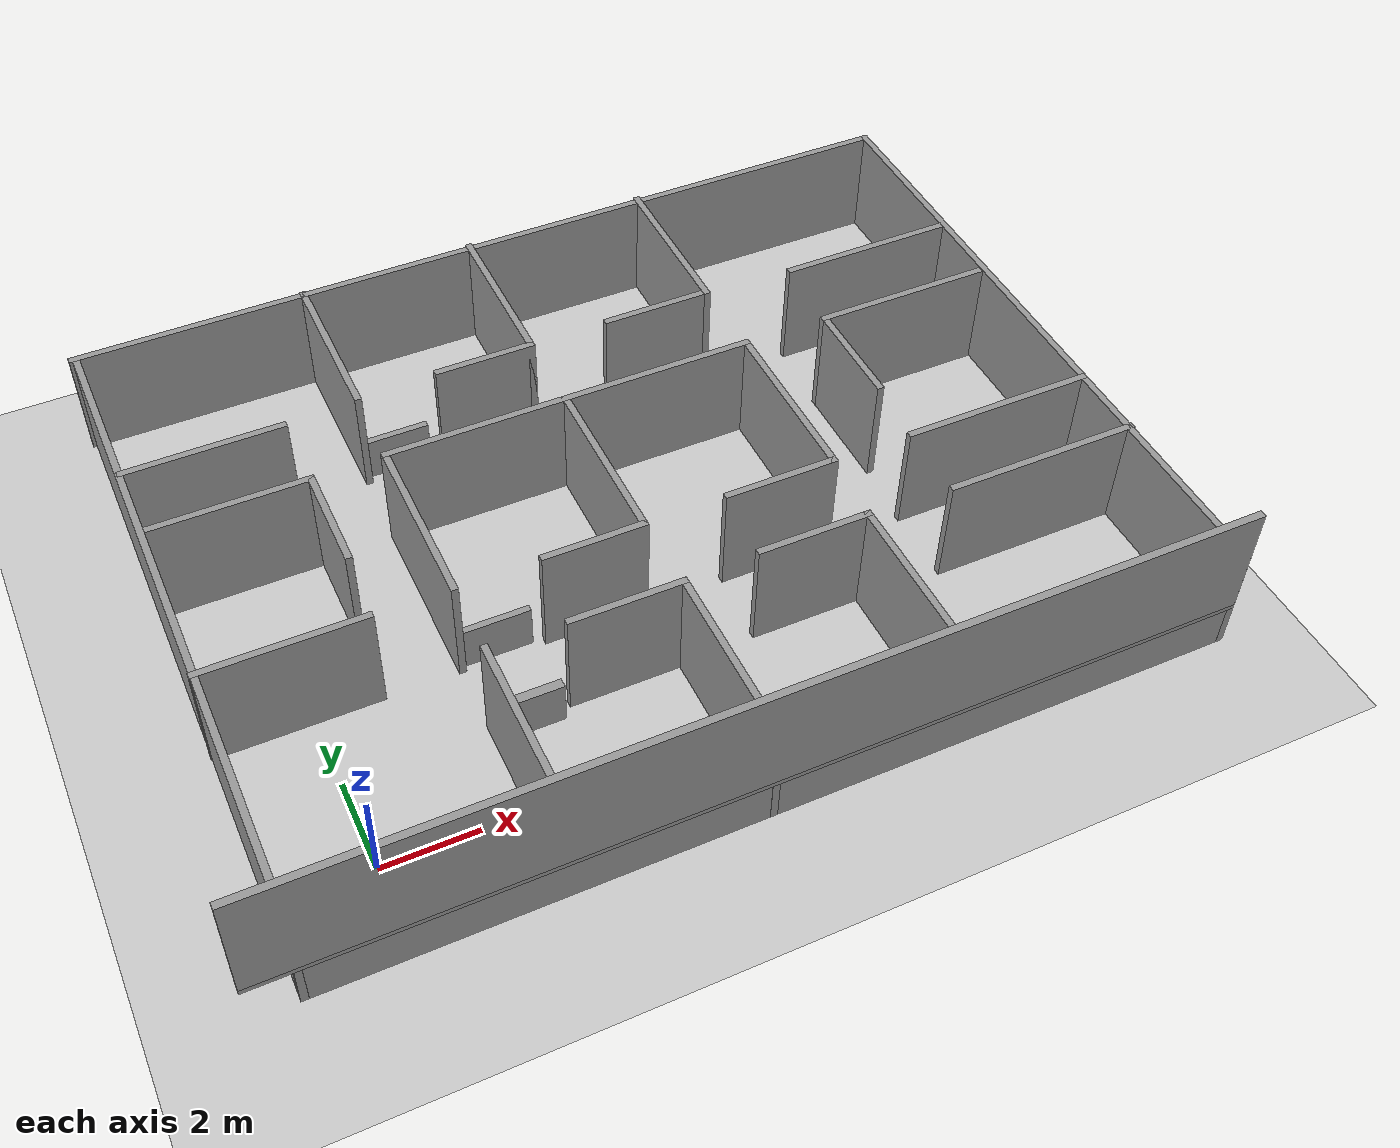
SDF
<sdf version="1.7">
 <world name="default">
  <light name="sun" type="directional">
   <pose>0 0 10 0 -0 0</pose>
   <diffuse>0.8 0.8 0.8 1</diffuse>
   <specular>0.2 0.2 0.2 1</specular>
   <attenuation>
    <range>1000</range>
    <constant>0.9</constant>
    <linear>0.01</linear>
    <quadratic>0.001</quadratic>
   </attenuation>
   <direction>-0.5 0.1 -0.9</direction>
   <spot><inner_angle>0</inner_angle><outer_angle>0</outer_angle><falloff>0</falloff></spot>
  </light>
  <model name="ground_plane">
   <static>1</static>
   <link name="link">
    <collision name="collision">
     <geometry><plane><normal>0 0 1</normal><size>100 100</size></plane></geometry>
     <surface><friction><ode><mu>100</mu><mu2>50</mu2></ode></friction></surface>
    </collision>
    <visual name="visual">
     <cast_shadows>0</cast_shadows>
     <geometry><plane><normal>0 0 1</normal><size>100 100</size></plane></geometry>
     <material>
      <script><uri>file://media/materials/scripts/gazebo.material</uri><name>Gazebo/Grey</name></script>
     </material>
    </visual>
   </link>
  </model>
  <gravity>0 0 -9.8</gravity>
  <magnetic_field>6e-06 2.3e-05 -4.2e-05</magnetic_field>
  <atmosphere type="adiabatic"/>
  <physics type="ode">
   <max_step_size>0.001</max_step_size>
   <real_time_factor>1</real_time_factor>
   <real_time_update_rate>1000</real_time_update_rate>
  </physics>
  <scene><ambient>0.4 0.4 0.4 1</ambient><background>0.7 0.7 0.7 1</background><shadows>1</shadows></scene>
  <spherical_coordinates>
   <surface_model>EARTH_WGS84</surface_model>
   <latitude_deg>0</latitude_deg>
   <longitude_deg>0</longitude_deg>
   <elevation>0</elevation>
   <heading_deg>0</heading_deg>
  </spherical_coordinates>
  <model name="indoors_2">
   <pose>7.49118 5.50535 0 0 -0 0</pose>
   <link name="Floor_0">
    <collision name="Floor_0_Collision">
     <geometry><box><size>19 0.15 0.1</size></box></geometry>
     <pose>0 0 0.05 0 -0 0</pose>
    </collision>
    <visual name="Floor_0_Visual">
     <pose>0 0 0.05 0 -0 0</pose>
     <geometry><box><size>19 0.15 0.1</size></box></geometry>
     <material>
      <script><uri>file://media/materials/scripts/gazebo.material</uri><name>Gazebo/Grey</name></script>
      <ambient>1 1 1 1</ambient>
     </material>
     <meta><layer>1</layer></meta>
    </visual>
    <pose>-1.02608 -8.28602 2.5 0 -0 0</pose>
   </link>
   <link name="Wall_0">
    <collision name="Wall_0_Collision">
     <geometry><box><size>19.15 0.15 2.5</size></box></geometry>
     <pose>0 0 1.25 0 -0 0</pose>
    </collision>
    <visual name="Wall_0_Visual">
     <pose>0 0 1.25 0 -0 0</pose>
     <geometry><box><size>19.15 0.15 2.5</size></box></geometry>
     <material>
      <script><uri>file://media/materials/scripts/gazebo.material</uri><name>Gazebo/Grey</name></script>
      <ambient>1 1 1 1</ambient>
     </material>
     <meta><layer>0</layer></meta>
    </visual>
    <pose>0.018922 -7.38602 0 0 -0 0</pose>
   </link>
   <link name="Wall_10">
    <collision name="Wall_10_Collision">
     <geometry><box><size>4 0.15 2.5</size></box></geometry>
     <pose>0 0 1.25 0 -0 0</pose>
    </collision>
    <visual name="Wall_10_Visual">
     <pose>0 0 1.25 0 -0 0</pose>
     <geometry><box><size>4 0.15 2.5</size></box></geometry>
     <material>
      <script><uri>file://media/materials/scripts/gazebo.material</uri><name>Gazebo/Grey</name></script>
      <ambient>1 1 1 1</ambient>
     </material>
     <meta><layer>0</layer></meta>
    </visual>
    <pose>-4.48108 -5.40902 0 0 -0 1.5708</pose>
   </link>
   <link name="Wall_12">
    <collision name="Wall_12_Collision">
     <geometry><box><size>4 0.15 2.5</size></box></geometry>
     <pose>0 0 1.25 0 -0 0</pose>
    </collision>
    <visual name="Wall_12_Visual">
     <pose>0 0 1.25 0 -0 0</pose>
     <geometry><box><size>4 0.15 2.5</size></box></geometry>
     <material>
      <script><uri>file://media/materials/scripts/gazebo.material</uri><name>Gazebo/Grey</name></script>
      <ambient>1 1 1 1</ambient>
     </material>
     <meta><layer>0</layer></meta>
    </visual>
    <pose>-0.481078 -5.46502 0 0 -0 1.5708</pose>
   </link>
   <link name="Wall_14">
    <collision name="Wall_14_Collision">
     <geometry><box><size>4 0.15 2.5</size></box></geometry>
     <pose>0 0 1.25 0 -0 0</pose>
    </collision>
    <visual name="Wall_14_Visual">
     <pose>0 0 1.25 0 -0 0</pose>
     <geometry><box><size>4 0.15 2.5</size></box></geometry>
     <material>
      <script><uri>file://media/materials/scripts/gazebo.material</uri><name>Gazebo/Grey</name></script>
      <ambient>1 1 1 1</ambient>
     </material>
     <meta><layer>0</layer></meta>
    </visual>
    <pose>3.51892 -5.39402 0 0 -0 1.5708</pose>
   </link>
   <link name="Wall_16">
    <collision name="Wall_16_Collision">
     <geometry><box><size>4.3 0.15 2.5</size></box></geometry>
     <pose>0 0 1.25 0 -0 0</pose>
    </collision>
    <visual name="Wall_16_Visual">
     <pose>0 0 1.25 0 -0 0</pose>
     <geometry><box><size>4.3 0.15 2.5</size></box></geometry>
     <material>
      <script><uri>file://media/materials/scripts/gazebo.material</uri><name>Gazebo/Grey</name></script>
      <ambient>1 1 1 1</ambient>
     </material>
     <meta><layer>0</layer></meta>
    </visual>
    <pose>7.47943 -3.5532 0 0 -0 3.14159</pose>
   </link>
   <link name="Wall_18">
    <collision name="Wall_18_Collision">
     <geometry><box><size>2.5 0.15 2.5</size></box></geometry>
     <pose>0 0 1.25 0 -0 0</pose>
    </collision>
    <visual name="Wall_18_Visual">
     <pose>0 0 1.25 0 -0 0</pose>
     <geometry><box><size>2.5 0.15 2.5</size></box></geometry>
     <material>
      <script><uri>file://media/materials/scripts/gazebo.material</uri><name>Gazebo/Grey</name></script>
      <ambient>1 1 1 1</ambient>
     </material>
     <meta><layer>0</layer></meta>
    </visual>
    <pose>-1.65608 -3.54002 0 0 -0 3.14159</pose>
   </link>
   <link name="Wall_2">
    <collision name="Wall_2_Collision">
     <geometry><box><size>19 0.15 2.5</size></box></geometry>
     <pose>0 0 1.25 0 -0 0</pose>
    </collision>
    <visual name="Wall_2_Visual">
     <pose>0 0 1.25 0 -0 0</pose>
     <geometry><box><size>19 0.15 2.5</size></box></geometry>
     <material>
      <script><uri>file://media/materials/scripts/gazebo.material</uri><name>Gazebo/Grey</name></script>
      <ambient>1 1 1 1</ambient>
     </material>
     <meta><layer>1</layer></meta>
    </visual>
    <pose>-1.02608 -8.28602 2.5 0 -0 0</pose>
   </link>
   <link name="Wall_20">
    <collision name="Wall_20_Collision">
     <geometry><box><size>2.5 0.15 2.5</size></box></geometry>
     <pose>0 0 1.25 0 -0 0</pose>
    </collision>
    <visual name="Wall_20_Visual">
     <pose>0 0 1.25 0 -0 0</pose>
     <geometry><box><size>2.5 0.15 2.5</size></box></geometry>
     <material>
      <script><uri>file://media/materials/scripts/gazebo.material</uri><name>Gazebo/Grey</name></script>
      <ambient>1 1 1 1</ambient>
     </material>
     <meta><layer>0</layer></meta>
    </visual>
    <pose>2.34392 -3.46902 0 0 -0 3.14159</pose>
   </link>
   <link name="Wall_22">
    <collision name="Wall_22_Collision">
     <geometry><box><size>3.5 0.15 2.5</size></box></geometry>
     <pose>0 0 1.25 0 -0 0</pose>
    </collision>
    <visual name="Wall_22_Visual">
     <pose>0 0 1.25 0 -0 0</pose>
     <geometry><box><size>3.5 0.15 2.5</size></box></geometry>
     <material>
      <script><uri>file://media/materials/scripts/gazebo.material</uri><name>Gazebo/Grey</name></script>
      <ambient>1 1 1 1</ambient>
     </material>
     <meta><layer>0</layer></meta>
    </visual>
    <pose>-7.82308 -1.88602 0 0 -0 0</pose>
   </link>
   <link name="Wall_24">
    <collision name="Wall_24_Collision">
     <geometry><box><size>3.5 0.15 2.5</size></box></geometry>
     <pose>0 0 1.25 0 -0 0</pose>
    </collision>
    <visual name="Wall_24_Visual">
     <pose>0 0 1.25 0 -0 0</pose>
     <geometry><box><size>3.5 0.15 2.5</size></box></geometry>
     <material>
      <script><uri>file://media/materials/scripts/gazebo.material</uri><name>Gazebo/Grey</name></script>
      <ambient>1 1 1 1</ambient>
     </material>
     <meta><layer>0</layer></meta>
    </visual>
    <pose>-7.71259 1.93002 0 0 -0 0</pose>
   </link>
   <link name="Wall_26">
    <collision name="Wall_26_Collision">
     <geometry><box><size>2.4 0.15 2.5</size></box></geometry>
     <pose>0 0 1.25 0 -0 0</pose>
    </collision>
    <visual name="Wall_26_Visual">
     <pose>0 0 1.25 0 -0 0</pose>
     <geometry><box><size>2.4 0.15 2.5</size></box></geometry>
     <material>
      <script><uri>file://media/materials/scripts/gazebo.material</uri><name>Gazebo/Grey</name></script>
      <ambient>1 1 1 1</ambient>
     </material>
     <meta><layer>0</layer></meta>
    </visual>
    <pose>-6.03759 0.805015 0 0 -0 -1.5708</pose>
   </link>
   <link name="Wall_28">
    <collision name="Wall_28_Collision">
     <geometry><box><size>3.5 0.15 2.5</size></box></geometry>
     <pose>0 0 1.25 0 -0 0</pose>
    </collision>
    <visual name="Wall_28_Visual">
     <pose>0 0 1.25 0 -0 0</pose>
     <geometry><box><size>3.5 0.15 2.5</size></box></geometry>
     <material>
      <script><uri>file://media/materials/scripts/gazebo.material</uri><name>Gazebo/Grey</name></script>
      <ambient>1 1 1 1</ambient>
     </material>
     <meta><layer>0</layer></meta>
    </visual>
    <pose>-7.76808 3.61398 0 0 -0 0</pose>
   </link>
   <link name="Wall_32">
    <collision name="Wall_32_Collision">
     <geometry><box><size>4 0.15 2.5</size></box></geometry>
     <pose>0 0 1.25 0 -0 0</pose>
    </collision>
    <visual name="Wall_32_Visual">
     <pose>0 0 1.25 0 -0 0</pose>
     <geometry><box><size>4 0.15 2.5</size></box></geometry>
     <material>
      <script><uri>file://media/materials/scripts/gazebo.material</uri><name>Gazebo/Grey</name></script>
      <ambient>1 1 1 1</ambient>
     </material>
     <meta><layer>0</layer></meta>
    </visual>
    <pose>-4.49048 0.026184 0 0 -0 1.5708</pose>
   </link>
   <link name="Wall_34">
    <collision name="Wall_34_Collision">
     <geometry><box><size>8.25 0.15 2.5</size></box></geometry>
     <pose>0 0 1.25 0 -0 0</pose>
    </collision>
    <visual name="Wall_34_Visual">
     <pose>0 0 1.25 0 -0 0</pose>
     <geometry><box><size>8.25 0.15 2.5</size></box></geometry>
     <material>
      <script><uri>file://media/materials/scripts/gazebo.material</uri><name>Gazebo/Grey</name></script>
      <ambient>1 1 1 1</ambient>
     </material>
     <meta><layer>0</layer></meta>
    </visual>
    <pose>-0.440485 1.95118 0 0 -0 0</pose>
   </link>
   <link name="Wall_35">
    <collision name="Wall_35_Collision">
     <geometry><box><size>4 0.15 2.5</size></box></geometry>
     <pose>0 0 1.25 0 -0 0</pose>
    </collision>
    <visual name="Wall_35_Visual">
     <pose>0 0 1.25 0 -0 0</pose>
     <geometry><box><size>4 0.15 2.5</size></box></geometry>
     <material>
      <script><uri>file://media/materials/scripts/gazebo.material</uri><name>Gazebo/Grey</name></script>
      <ambient>1 1 1 1</ambient>
     </material>
     <meta><layer>0</layer></meta>
    </visual>
    <pose>3.60952 0.026184 0 0 -0 -1.5708</pose>
   </link>
   <link name="Wall_37">
    <collision name="Wall_37_Collision">
     <geometry><box><size>2.5 0.15 2.5</size></box></geometry>
     <pose>0 0 1.25 0 -0 0</pose>
    </collision>
    <visual name="Wall_37_Visual">
     <pose>0 0 1.25 0 -0 0</pose>
     <geometry><box><size>2.5 0.15 2.5</size></box></geometry>
     <material>
      <script><uri>file://media/materials/scripts/gazebo.material</uri><name>Gazebo/Grey</name></script>
      <ambient>1 1 1 1</ambient>
     </material>
     <meta><layer>0</layer></meta>
    </visual>
    <pose>2.43452 -1.89882 0 0 -0 3.14159</pose>
   </link>
   <link name="Wall_39">
    <collision name="Wall_39_Collision">
     <geometry><box><size>4 0.15 2.5</size></box></geometry>
     <pose>0 0 1.25 0 -0 0</pose>
    </collision>
    <visual name="Wall_39_Visual">
     <pose>0 0 1.25 0 -0 0</pose>
     <geometry><box><size>4 0.15 2.5</size></box></geometry>
     <material>
      <script><uri>file://media/materials/scripts/gazebo.material</uri><name>Gazebo/Grey</name></script>
      <ambient>1 1 1 1</ambient>
     </material>
     <meta><layer>0</layer></meta>
    </visual>
    <pose>-0.557426 0.026184 0 0 -0 1.5708</pose>
   </link>
   <link name="Wall_4">
    <collision name="Wall_4_Collision">
     <geometry><box><size>14.8671 0.15 2.5</size></box></geometry>
     <pose>0 0 1.25 0 -0 0</pose>
    </collision>
    <visual name="Wall_4_Visual">
     <pose>0 0 1.25 0 -0 0</pose>
     <geometry><box><size>14.8671 0.15 2.5</size></box></geometry>
     <material>
      <script><uri>file://media/materials/scripts/gazebo.material</uri><name>Gazebo/Grey</name></script>
      <ambient>1 1 1 1</ambient>
     </material>
     <meta><layer>0</layer></meta>
    </visual>
    <pose>-9.48108 -0.027809 0 0 -0 1.5708</pose>
   </link>
   <link name="Wall_42">
    <collision name="Wall_42_Collision">
     <geometry><box><size>2.25 0.15 2.5</size></box></geometry>
     <pose>0 0 1.25 0 -0 0</pose>
    </collision>
    <visual name="Wall_42_Visual">
     <pose>0 0 1.25 0 -0 0</pose>
     <geometry><box><size>2.25 0.15 2.5</size></box></geometry>
     <material>
      <script><uri>file://media/materials/scripts/gazebo.material</uri><name>Gazebo/Grey</name></script>
      <ambient>1 1 1 1</ambient>
     </material>
     <meta><layer>0</layer></meta>
    </visual>
    <pose>-1.60743 -1.89882 0 0 -0 3.14159</pose>
   </link>
   <link name="Wall_44">
    <collision name="Wall_44_Collision">
     <geometry><box><size>4.25 0.15 2.5</size></box></geometry>
     <pose>0 0 1.25 0 -0 0</pose>
    </collision>
    <visual name="Wall_44_Visual">
     <pose>0 0 1.25 0 -0 0</pose>
     <geometry><box><size>4.25 0.15 2.5</size></box></geometry>
     <material>
      <script><uri>file://media/materials/scripts/gazebo.material</uri><name>Gazebo/Grey</name></script>
      <ambient>1 1 1 1</ambient>
     </material>
     <meta><layer>0</layer></meta>
    </visual>
    <pose>7.45621 -1.91179 0 0 -0 0</pose>
   </link>
   <link name="Wall_46">
    <collision name="Wall_46_Collision">
     <geometry><box><size>4 0.15 2.5</size></box></geometry>
     <pose>0 0 1.25 0 -0 0</pose>
    </collision>
    <visual name="Wall_46_Visual">
     <pose>0 0 1.25 0 -0 0</pose>
     <geometry><box><size>4 0.15 2.5</size></box></geometry>
     <material>
      <script><uri>file://media/materials/scripts/gazebo.material</uri><name>Gazebo/Grey</name></script>
      <ambient>1 1 1 1</ambient>
     </material>
     <meta><layer>0</layer></meta>
    </visual>
    <pose>7.42753 1.94115 0 0 -0 0</pose>
   </link>
   <link name="Wall_48">
    <collision name="Wall_48_Collision">
     <geometry><box><size>2.5 0.15 2.5</size></box></geometry>
     <pose>0 0 1.25 0 -0 0</pose>
    </collision>
    <visual name="Wall_48_Visual">
     <pose>0 0 1.25 0 -0 0</pose>
     <geometry><box><size>2.5 0.15 2.5</size></box></geometry>
     <material>
      <script><uri>file://media/materials/scripts/gazebo.material</uri><name>Gazebo/Grey</name></script>
      <ambient>1 1 1 1</ambient>
     </material>
     <meta><layer>0</layer></meta>
    </visual>
    <pose>5.50253 0.766149 0 0 -0 -1.5708</pose>
   </link>
   <link name="Wall_50">
    <collision name="Wall_50_Collision">
     <geometry><box><size>3.75 0.15 2.5</size></box></geometry>
     <pose>0 0 1.25 0 -0 0</pose>
    </collision>
    <visual name="Wall_50_Visual">
     <pose>0 0 1.25 0 -0 0</pose>
     <geometry><box><size>3.75 0.15 2.5</size></box></geometry>
     <material>
      <script><uri>file://media/materials/scripts/gazebo.material</uri><name>Gazebo/Grey</name></script>
      <ambient>1 1 1 1</ambient>
     </material>
     <meta><layer>0</layer></meta>
    </visual>
    <pose>-4.46932 5.55322 0 0 -0 -1.5708</pose>
   </link>
   <link name="Wall_52">
    <collision name="Wall_52_Collision">
     <geometry><box><size>3.75 0.15 2.5</size></box></geometry>
     <pose>0 0 1.25 0 -0 0</pose>
    </collision>
    <visual name="Wall_52_Visual">
     <pose>0 0 1.25 0 -0 0</pose>
     <geometry><box><size>3.75 0.15 2.5</size></box></geometry>
     <material>
      <script><uri>file://media/materials/scripts/gazebo.material</uri><name>Gazebo/Grey</name></script>
      <ambient>1 1 1 1</ambient>
     </material>
     <meta><layer>0</layer></meta>
    </visual>
    <pose>-0.580388 5.59002 0 0 -0 1.5708</pose>
   </link>
   <link name="Wall_54">
    <collision name="Wall_54_Collision">
     <geometry><box><size>3.75 0.15 2.5</size></box></geometry>
     <pose>0 0 1.25 0 -0 0</pose>
    </collision>
    <visual name="Wall_54_Visual">
     <pose>0 0 1.25 0 -0 0</pose>
     <geometry><box><size>3.75 0.15 2.5</size></box></geometry>
     <material>
      <script><uri>file://media/materials/scripts/gazebo.material</uri><name>Gazebo/Grey</name></script>
      <ambient>1 1 1 1</ambient>
     </material>
     <meta><layer>0</layer></meta>
    </visual>
    <pose>3.55972 5.59002 0 0 -0 1.5708</pose>
   </link>
   <link name="Wall_56">
    <collision name="Wall_56_Collision">
     <geometry><box><size>2.5 0.15 2.5</size></box></geometry>
     <pose>0 0 1.25 0 -0 0</pose>
    </collision>
    <visual name="Wall_56_Visual">
     <pose>0 0 1.25 0 -0 0</pose>
     <geometry><box><size>2.5 0.15 2.5</size></box></geometry>
     <material>
      <script><uri>file://media/materials/scripts/gazebo.material</uri><name>Gazebo/Grey</name></script>
      <ambient>1 1 1 1</ambient>
     </material>
     <meta><layer>0</layer></meta>
    </visual>
    <pose>2.38472 3.79002 0 0 -0 0</pose>
   </link>
   <link name="Wall_58">
    <collision name="Wall_58_Collision">
     <geometry><box><size>2.25 0.15 2.5</size></box></geometry>
     <pose>0 0 1.25 0 -0 0</pose>
    </collision>
    <visual name="Wall_58_Visual">
     <pose>0 0 1.25 0 -0 0</pose>
     <geometry><box><size>2.25 0.15 2.5</size></box></geometry>
     <material>
      <script><uri>file://media/materials/scripts/gazebo.material</uri><name>Gazebo/Grey</name></script>
      <ambient>1 1 1 1</ambient>
     </material>
     <meta><layer>0</layer></meta>
    </visual>
    <pose>-1.63039 3.79002 0 0 -0 0</pose>
   </link>
   <link name="Wall_6">
    <collision name="Wall_6_Collision">
     <geometry><box><size>14.8402 0.15 2.5</size></box></geometry>
     <pose>0 0 1.25 0 -0 0</pose>
    </collision>
    <visual name="Wall_6_Visual">
     <pose>0 0 1.25 0 -0 0</pose>
     <geometry><box><size>14.8402 0.15 2.5</size></box></geometry>
     <material>
      <script><uri>file://media/materials/scripts/gazebo.material</uri><name>Gazebo/Grey</name></script>
      <ambient>1 1 1 1</ambient>
     </material>
     <meta><layer>0</layer></meta>
    </visual>
    <pose>9.51892 -0.041274 0 0 -0 1.5708</pose>
   </link>
   <link name="Wall_60">
    <collision name="Wall_60_Collision">
     <geometry><box><size>4 0.15 2.5</size></box></geometry>
     <pose>0 0 1.25 0 -0 0</pose>
    </collision>
    <visual name="Wall_60_Visual">
     <pose>0 0 1.25 0 -0 0</pose>
     <geometry><box><size>4 0.15 2.5</size></box></geometry>
     <material>
      <script><uri>file://media/materials/scripts/gazebo.material</uri><name>Gazebo/Grey</name></script>
      <ambient>1 1 1 1</ambient>
     </material>
     <meta><layer>0</layer></meta>
    </visual>
    <pose>7.52292 3.66263 0 0 -0 0</pose>
   </link>
   <link name="Wall_8">
    <collision name="Wall_8_Collision">
     <geometry><box><size>19.15 0.15 2.5</size></box></geometry>
     <pose>0 0 1.25 0 -0 0</pose>
    </collision>
    <visual name="Wall_8_Visual">
     <pose>0 0 1.25 0 -0 0</pose>
     <geometry><box><size>19.15 0.15 2.5</size></box></geometry>
     <material>
      <script><uri>file://media/materials/scripts/gazebo.material</uri><name>Gazebo/Grey</name></script>
      <ambient>1 1 1 1</ambient>
     </material>
     <meta><layer>0</layer></meta>
    </visual>
    <pose>-0.054326 7.31693 0 0 -0 -0.001417</pose>
   </link>
   <static>1</static>
  </model>
  <model name="unit_box">
   <pose>3.75042 1.77491 0.5 0 1e-06 -0.000326</pose>
   <link name="link">
    <inertial>
     <mass>1</mass>
     <inertia>
      <ixx>0.166667</ixx>
      <ixy>0</ixy>
      <ixz>0</ixz>
      <iyy>0.166667</iyy>
      <iyz>0</iyz>
      <izz>0.166667</izz>
     </inertia>
    </inertial>
    <collision name="collision"><geometry><box><size>1.32328 0.204609 1</size></box></geometry></collision>
    <visual name="visual">
     <geometry><box><size>1.32328 0.204609 1</size></box></geometry>
     <material>
      <script><name>Gazebo/Grey</name><uri>file://media/materials/scripts/gazebo.material</uri></script>
     </material>
    </visual>
   </link>
  </model>
  <model name="unit_box_clone">
   <pose>3.8111 3.74188 0.499998 0 2e-06 -2.6e-05</pose>
   <link name="link">
    <inertial>
     <mass>1</mass>
     <inertia>
      <ixx>0.166667</ixx>
      <ixy>0</ixy>
      <ixz>0</ixz>
      <iyy>0.166667</iyy>
      <iyz>0</iyz>
      <izz>0.166667</izz>
     </inertia>
    </inertial>
    <collision name="collision"><geometry><box><size>1.46409 0.143808 1</size></box></geometry></collision>
    <visual name="visual">
     <geometry><box><size>1.46409 0.143808 1</size></box></geometry>
     <material>
      <script><name>Gazebo/Grey</name><uri>file://media/materials/scripts/gazebo.material</uri></script>
     </material>
    </visual>
   </link>
  </model>
  <model name="unit_box_clone_clone">
   <pose>3.8001 9.44373 0.499999 0 -1e-06 0.00071</pose>
   <link name="link">
    <inertial>
     <mass>1</mass>
     <inertia>
      <ixx>0.166667</ixx>
      <ixy>0</ixy>
      <ixz>0</ixz>
      <iyy>0.166667</iyy>
      <iyz>0</iyz>
      <izz>0.166667</izz>
     </inertia>
    </inertial>
    <collision name="collision"><geometry><box><size>1.39575 0.143808 1</size></box></geometry></collision>
    <visual name="visual">
     <geometry><box><size>1.39575 0.143808 1</size></box></geometry>
     <material>
      <script><name>Gazebo/Grey</name><uri>file://media/materials/scripts/gazebo.material</uri></script>
     </material>
    </visual>
   </link>
  </model>
 </world>
</sdf>
